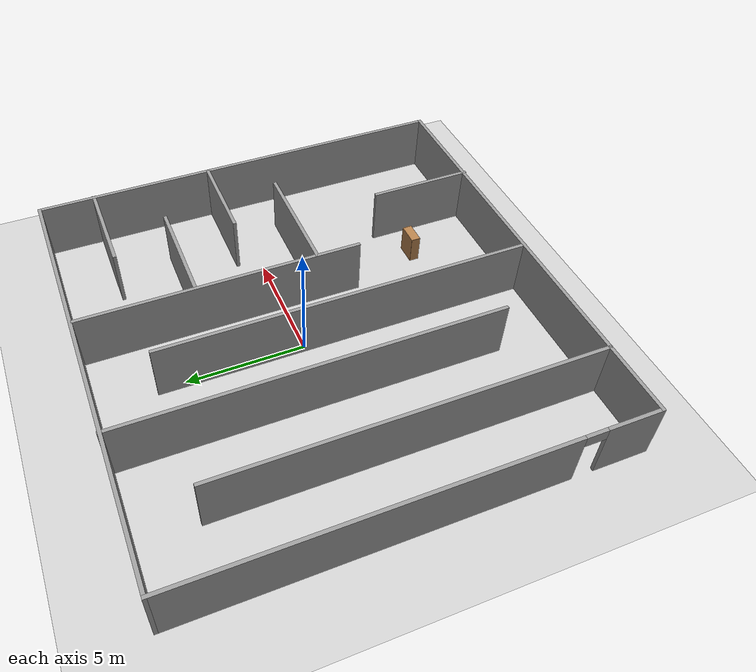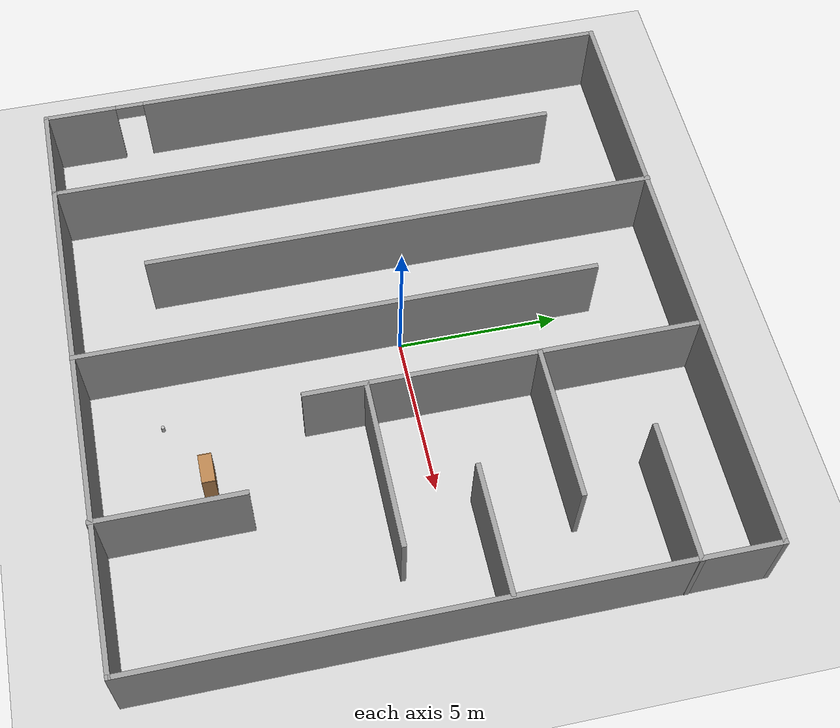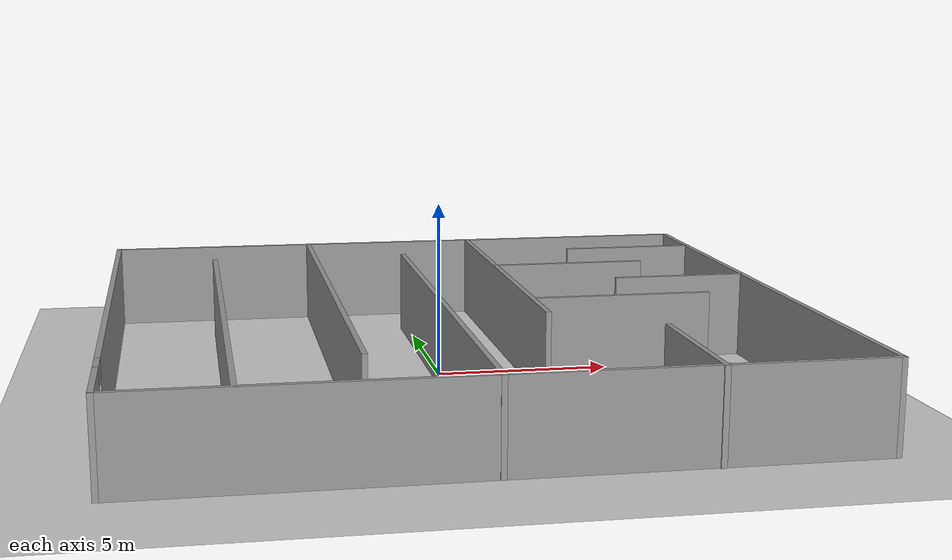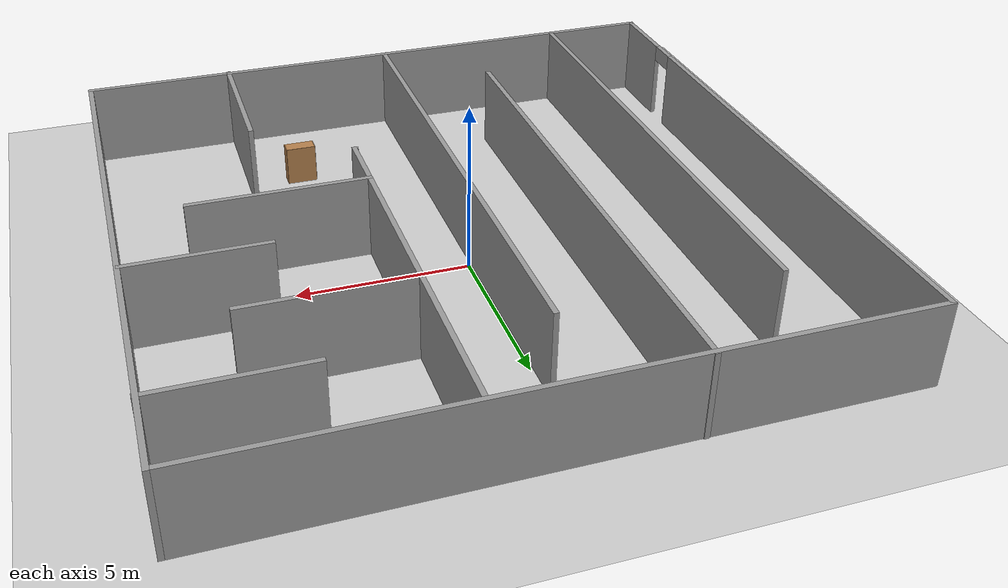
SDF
<sdf version="1.7">
 <world name="default">
  <light name="sun" type="directional">
   <pose>0 0 10 0 -0 0</pose>
   <diffuse>0.8 0.8 0.8 1</diffuse>
   <specular>0.2 0.2 0.2 1</specular>
   <attenuation>
    <range>1000</range>
    <constant>0.9</constant>
    <linear>0.01</linear>
    <quadratic>0.001</quadratic>
   </attenuation>
   <direction>-0.5 0.1 -0.9</direction>
   <spot><inner_angle>0</inner_angle><outer_angle>0</outer_angle><falloff>0</falloff></spot>
  </light>
  <model name="ground_plane">
   <static>1</static>
   <link name="link">
    <collision name="collision">
     <geometry><plane><normal>0 0 1</normal><size>100 100</size></plane></geometry>
     <surface>
      <contact><collide_bitmask>65535</collide_bitmask></contact>
      <friction><ode><mu>100</mu><mu2>50</mu2></ode></friction>
     </surface>
    </collision>
    <visual name="visual">
     <cast_shadows>0</cast_shadows>
     <geometry><plane><normal>0 0 1</normal><size>100 100</size></plane></geometry>
     <material>
      <script><uri>file://media/materials/scripts/gazebo.material</uri><name>Gazebo/Grey</name></script>
     </material>
    </visual>
   </link>
  </model>
  <gravity>0 0 -9.8</gravity>
  <magnetic_field>6e-06 2.3e-05 -4.2e-05</magnetic_field>
  <atmosphere type="adiabatic"/>
  <physics type="ode">
   <max_step_size>0.001</max_step_size>
   <real_time_factor>1</real_time_factor>
   <real_time_update_rate>1000</real_time_update_rate>
  </physics>
  <scene><ambient>0.4 0.4 0.4 1</ambient><background>0.7 0.7 0.7 1</background><shadows>1</shadows></scene>
  <spherical_coordinates>
   <surface_model>EARTH_WGS84</surface_model>
   <latitude_deg>0</latitude_deg>
   <longitude_deg>0</longitude_deg>
   <elevation>0</elevation>
   <heading_deg>0</heading_deg>
  </spherical_coordinates>
  <model name="walls">
   <pose>0.124523 -0.607004 0 0 -0 0</pose>
   <link name="Wall_19">
    <collision name="Wall_19_Collision">
     <geometry><box><size>19 0.15 2.5</size></box></geometry>
     <pose>0 0 1.25 0 -0 0</pose>
    </collision>
    <visual name="Wall_19_Visual">
     <pose>0 0 1.25 0 -0 0</pose>
     <geometry><box><size>19 0.15 2.5</size></box></geometry>
     <material>
      <script><uri>file://media/materials/scripts/gazebo.material</uri><name>Gazebo/Grey</name></script>
      <ambient>1 1 1 1</ambient>
     </material>
     <meta><layer>0</layer></meta>
    </visual>
    <pose>-0.008258 -9.16695 0 0 -0 0</pose>
   </link>
   <link name="Wall_20">
    <collision name="Wall_20_Collision">
     <geometry><box><size>18.5 0.15 2.5</size></box></geometry>
     <pose>0 0 1.25 0 -0 0</pose>
    </collision>
    <visual name="Wall_20_Visual">
     <pose>0 0 1.25 0 -0 0</pose>
     <geometry><box><size>18.5 0.15 2.5</size></box></geometry>
     <material>
      <script><uri>file://media/materials/scripts/gazebo.material</uri><name>Gazebo/Grey</name></script>
      <ambient>1 1 1 1</ambient>
     </material>
     <meta><layer>0</layer></meta>
    </visual>
    <pose>9.41674 0.008045 0 0 -0 1.5708</pose>
   </link>
   <link name="Wall_21">
    <collision name="Wall_21_Collision">
     <geometry><box><size>19 0.15 2.5</size></box></geometry>
     <pose>0 0 1.25 0 -0 0</pose>
    </collision>
    <visual name="Wall_21_Visual">
     <pose>0 0 1.25 0 -0 0</pose>
     <geometry><box><size>19 0.15 2.5</size></box></geometry>
     <material>
      <script><uri>file://media/materials/scripts/gazebo.material</uri><name>Gazebo/Grey</name></script>
      <ambient>1 1 1 1</ambient>
     </material>
     <meta><layer>0</layer></meta>
    </visual>
    <pose>-0.008258 9.18304 0 0 -0 3.14159</pose>
   </link>
   <link name="Wall_22">
    <pose>-9.43326 0.008045 0 0 -0 -1.5708</pose>
    <visual name="Wall_22_Visual_0">
     <pose>-1.61271 0 1.25 0 -0 0</pose>
     <geometry><box><size>15.2746 0.15 2.5</size></box></geometry>
     <material>
      <script><uri>file://media/materials/scripts/gazebo.material</uri><name>Gazebo/Grey</name></script>
      <ambient>1 1 1 1</ambient>
     </material>
     <meta><layer>0</layer></meta>
    </visual>
    <collision name="Wall_22_Collision_0">
     <geometry><box><size>15.2746 0.15 2.5</size></box></geometry>
     <pose>-1.61271 0 1.25 0 -0 0</pose>
    </collision>
    <visual name="Wall_22_Visual_1">
     <pose>8.08729 0 1.25 0 -0 0</pose>
     <geometry><box><size>2.32543 0.15 2.5</size></box></geometry>
     <material>
      <script><uri>file://media/materials/scripts/gazebo.material</uri><name>Gazebo/Grey</name></script>
      <ambient>1 1 1 1</ambient>
     </material>
     <meta><layer>0</layer></meta>
    </visual>
    <collision name="Wall_22_Collision_1">
     <geometry><box><size>2.32543 0.15 2.5</size></box></geometry>
     <pose>8.08729 0 1.25 0 -0 0</pose>
    </collision>
    <visual name="Wall_22_Visual_2">
     <pose>6.47457 0 2.25 0 -0 0</pose>
     <geometry><box><size>0.9 0.15 0.5</size></box></geometry>
     <material>
      <script><uri>file://media/materials/scripts/gazebo.material</uri><name>Gazebo/Grey</name></script>
      <ambient>1 1 1 1</ambient>
     </material>
     <meta><layer>0</layer></meta>
    </visual>
    <collision name="Wall_22_Collision_2">
     <geometry><box><size>0.9 0.15 0.5</size></box></geometry>
     <pose>6.47457 0 2.25 0 -0 0</pose>
    </collision>
   </link>
   <link name="Wall_24">
    <collision name="Wall_24_Collision">
     <geometry><box><size>16 0.15 2.5</size></box></geometry>
     <pose>0 0 1.25 0 -0 0</pose>
    </collision>
    <visual name="Wall_24_Visual">
     <pose>0 0 1.25 0 -0 0</pose>
     <geometry><box><size>16 0.15 2.5</size></box></geometry>
     <material>
      <script><uri>file://media/materials/scripts/gazebo.material</uri><name>Gazebo/Grey</name></script>
      <ambient>1 1 1 1</ambient>
     </material>
     <meta><layer>0</layer></meta>
    </visual>
    <pose>-6.34713 -1.21734 0 0 -0 1.5708</pose>
   </link>
   <link name="Wall_26">
    <collision name="Wall_26_Collision">
     <geometry><box><size>16 0.15 2.5</size></box></geometry>
     <pose>0 0 1.25 0 -0 0</pose>
    </collision>
    <visual name="Wall_26_Visual">
     <pose>0 0 1.25 0 -0 0</pose>
     <geometry><box><size>16 0.15 2.5</size></box></geometry>
     <material>
      <script><uri>file://media/materials/scripts/gazebo.material</uri><name>Gazebo/Grey</name></script>
      <ambient>1 1 1 1</ambient>
     </material>
     <meta><layer>0</layer></meta>
    </visual>
    <pose>-3.15675 1.28594 0 0 -0 -1.5708</pose>
   </link>
   <link name="Wall_28">
    <collision name="Wall_28_Collision">
     <geometry><box><size>16 0.15 2.5</size></box></geometry>
     <pose>0 0 1.25 0 -0 0</pose>
    </collision>
    <visual name="Wall_28_Visual">
     <pose>0 0 1.25 0 -0 0</pose>
     <geometry><box><size>16 0.15 2.5</size></box></geometry>
     <material>
      <script><uri>file://media/materials/scripts/gazebo.material</uri><name>Gazebo/Grey</name></script>
      <ambient>1 1 1 1</ambient>
     </material>
     <meta><layer>0</layer></meta>
    </visual>
    <pose>-0.275112 -1.25164 0 0 -0 1.5708</pose>
   </link>
   <link name="Wall_30">
    <collision name="Wall_30_Collision">
     <geometry><box><size>12 0.15 2.5</size></box></geometry>
     <pose>0 0 1.25 0 -0 0</pose>
    </collision>
    <visual name="Wall_30_Visual">
     <pose>0 0 1.25 0 -0 0</pose>
     <geometry><box><size>12 0.15 2.5</size></box></geometry>
     <material>
      <script><uri>file://media/materials/scripts/gazebo.material</uri><name>Gazebo/Grey</name></script>
      <ambient>1 1 1 1</ambient>
     </material>
     <meta><layer>0</layer></meta>
    </visual>
    <pose>2.29778 3.14872 0 0 -0 -1.5708</pose>
   </link>
   <link name="Wall_32">
    <collision name="Wall_32_Collision">
     <geometry><box><size>4.5 0.15 2.5</size></box></geometry>
     <pose>0 0 1.25 0 -0 0</pose>
    </collision>
    <visual name="Wall_32_Visual">
     <pose>0 0 1.25 0 -0 0</pose>
     <geometry><box><size>4.5 0.15 2.5</size></box></geometry>
     <material>
      <script><uri>file://media/materials/scripts/gazebo.material</uri><name>Gazebo/Grey</name></script>
      <ambient>1 1 1 1</ambient>
     </material>
     <meta><layer>0</layer></meta>
    </visual>
    <pose>5.00789 -7.03594 0 0 -0 1.5708</pose>
   </link>
   <link name="Wall_35">
    <collision name="Wall_35_Collision">
     <geometry><box><size>4.25 0.15 2.5</size></box></geometry>
     <pose>0 0 1.25 0 -0 0</pose>
    </collision>
    <visual name="Wall_35_Visual">
     <pose>0 0 1.25 0 -0 0</pose>
     <geometry><box><size>4.25 0.15 2.5</size></box></geometry>
     <material>
      <script><uri>file://media/materials/scripts/gazebo.material</uri><name>Gazebo/Grey</name></script>
      <ambient>1 1 1 1</ambient>
     </material>
     <meta><layer>0</layer></meta>
    </visual>
    <pose>7.38326 6.80958 0 0 -0 3.14159</pose>
   </link>
   <link name="Wall_41">
    <collision name="Wall_41_Collision">
     <geometry><box><size>4.75 0.15 2.5</size></box></geometry>
     <pose>0 0 1.25 0 -0 0</pose>
    </collision>
    <visual name="Wall_41_Visual">
     <pose>0 0 1.25 0 -0 0</pose>
     <geometry><box><size>4.75 0.15 2.5</size></box></geometry>
     <material>
      <script><uri>file://media/materials/scripts/gazebo.material</uri><name>Gazebo/Grey</name></script>
      <ambient>1 1 1 1</ambient>
     </material>
     <meta><layer>0</layer></meta>
    </visual>
    <pose>4.63208 4.23669 0 0 -0 0</pose>
   </link>
   <link name="Wall_45">
    <collision name="Wall_45_Collision">
     <geometry><box><size>4 0.15 2.5</size></box></geometry>
     <pose>0 0 1.25 0 -0 0</pose>
    </collision>
    <visual name="Wall_45_Visual">
     <pose>0 0 1.25 0 -0 0</pose>
     <geometry><box><size>4 0.15 2.5</size></box></geometry>
     <material>
      <script><uri>file://media/materials/scripts/gazebo.material</uri><name>Gazebo/Grey</name></script>
      <ambient>1 1 1 1</ambient>
     </material>
     <meta><layer>0</layer></meta>
    </visual>
    <pose>7.43965 1.59519 0 0 -0 3.14159</pose>
   </link>
   <link name="Wall_49">
    <collision name="Wall_49_Collision">
     <geometry><box><size>5.25 0.15 2.5</size></box></geometry>
     <pose>0 0 1.25 0 -0 0</pose>
    </collision>
    <visual name="Wall_49_Visual">
     <pose>0 0 1.25 0 -0 0</pose>
     <geometry><box><size>5.25 0.15 2.5</size></box></geometry>
     <material>
      <script><uri>file://media/materials/scripts/gazebo.material</uri><name>Gazebo/Grey</name></script>
      <ambient>1 1 1 1</ambient>
     </material>
     <meta><layer>0</layer></meta>
    </visual>
    <pose>4.84778 -0.943393 0 0 -0 0</pose>
   </link>
   <static>1</static>
  </model>
  <model name="beer">
   <link name="link">
    <pose>0 0 0.115 0 -0 0</pose>
    <inertial>
     <mass>0.39</mass>
     <inertia><ixx>0.00058</ixx><ixy>0</ixy><ixz>0</ixz><iyy>0.00058</iyy><iyz>0</iyz><izz>0.00019</izz></inertia>
    </inertial>
    <collision name="collision">
     <geometry><cylinder><radius>0.055</radius><length>0.23</length></cylinder></geometry>
    </collision>
    <visual name="visual">
     <geometry><cylinder><radius>0.055</radius><length>0.23</length></cylinder></geometry>
     <material>
      <script>
       <uri>model://beer/materials/scripts</uri>
       <uri>model://beer/materials/textures</uri>
       <name>Beer/Diffuse</name>
      </script>
     </material>
    </visual>
   </link>
   <pose>1.42786 -7.62617 -7e-06 -1e-06 -0 -6e-06</pose>
  </model>
  <model name="bookshelf">
   <static>1</static>
   <link name="link">
    <inertial><mass>1</mass></inertial>
    <collision name="back">
     <pose>0 0.005 0.6 0 -0 0</pose>
     <geometry><box><size>0.9 0.01 1.2</size></box></geometry>
    </collision>
    <visual name="visual1">
     <pose>0 0.005 0.6 0 -0 0</pose>
     <geometry><box><size>0.9 0.01 1.2</size></box></geometry>
     <material>
      <script><uri>file://media/materials/scripts/gazebo.material</uri><name>Gazebo/Wood</name></script>
     </material>
    </visual>
    <collision name="left_side">
     <pose>0.45 -0.195 0.6 0 -0 0</pose>
     <geometry><box><size>0.02 0.4 1.2</size></box></geometry>
    </collision>
    <visual name="visual2">
     <pose>0.45 -0.195 0.6 0 -0 0</pose>
     <geometry><box><size>0.02 0.4 1.2</size></box></geometry>
     <material>
      <script><uri>file://media/materials/scripts/gazebo.material</uri><name>Gazebo/Wood</name></script>
     </material>
    </visual>
    <collision name="right_side">
     <pose>-0.45 -0.195 0.6 0 -0 0</pose>
     <geometry><box><size>0.02 0.4 1.2</size></box></geometry>
    </collision>
    <visual name="visual3">
     <pose>-0.45 -0.195 0.6 0 -0 0</pose>
     <geometry><box><size>0.02 0.4 1.2</size></box></geometry>
     <material>
      <script><uri>file://media/materials/scripts/gazebo.material</uri><name>Gazebo/Wood</name></script>
     </material>
    </visual>
    <collision name="bottom">
     <pose>0 -0.195 0.03 0 -0 0</pose>
     <geometry><box><size>0.88 0.4 0.06</size></box></geometry>
    </collision>
    <visual name="visual4">
     <pose>0 -0.195 0.03 0 -0 0</pose>
     <geometry><box><size>0.88 0.4 0.06</size></box></geometry>
     <material>
      <script><uri>file://media/materials/scripts/gazebo.material</uri><name>Gazebo/Wood</name></script>
     </material>
    </visual>
    <collision name="top">
     <pose>0 -0.195 1.19 0 -0 0</pose>
     <geometry><box><size>0.88 0.4 0.02</size></box></geometry>
    </collision>
    <visual name="visual5">
     <pose>0 -0.195 1.19 0 -0 0</pose>
     <geometry><box><size>0.88 0.4 0.02</size></box></geometry>
     <material>
      <script><uri>file://media/materials/scripts/gazebo.material</uri><name>Gazebo/Wood</name></script>
     </material>
    </visual>
    <collision name="low_shelf">
     <pose>0 -0.195 0.43 0 -0 0</pose>
     <geometry><box><size>0.88 0.4 0.02</size></box></geometry>
    </collision>
    <visual name="visual6">
     <pose>0 -0.195 0.43 0 -0 0</pose>
     <geometry><box><size>0.88 0.4 0.02</size></box></geometry>
     <material>
      <script><uri>file://media/materials/scripts/gazebo.material</uri><name>Gazebo/Wood</name></script>
     </material>
    </visual>
    <collision name="high_shelf">
     <pose>0 -0.195 0.8 0 -0 0</pose>
     <geometry><box><size>0.88 0.4 0.02</size></box></geometry>
    </collision>
    <visual name="visual7">
     <pose>0 -0.195 0.8 0 -0 0</pose>
     <geometry><box><size>0.88 0.4 0.02</size></box></geometry>
     <material>
      <script><uri>file://media/materials/scripts/gazebo.material</uri><name>Gazebo/Wood</name></script>
     </material>
    </visual>
   </link>
   <pose>3.51889 -6.30171 0 0 -0 0</pose>
  </model>
 </world>
</sdf>
